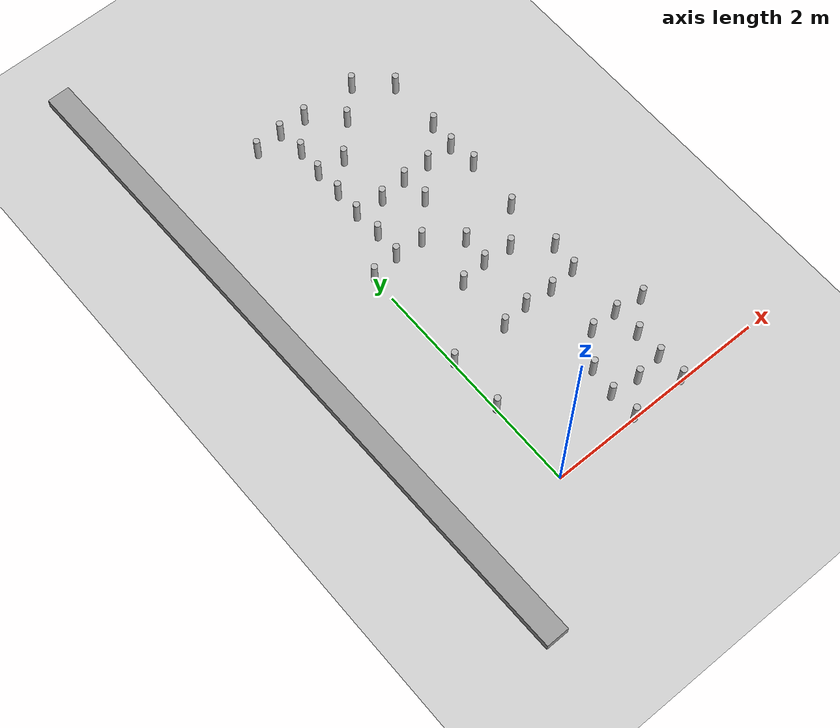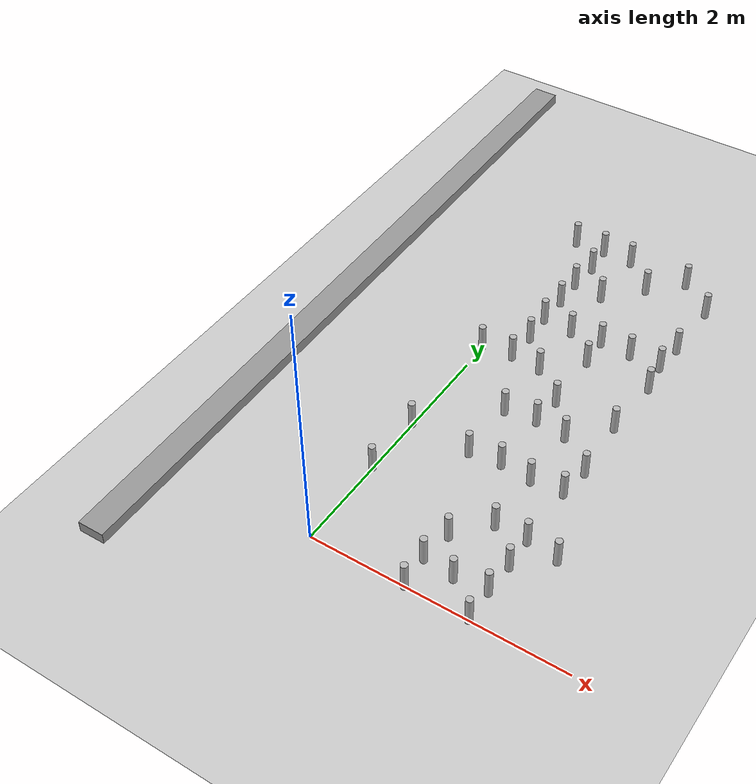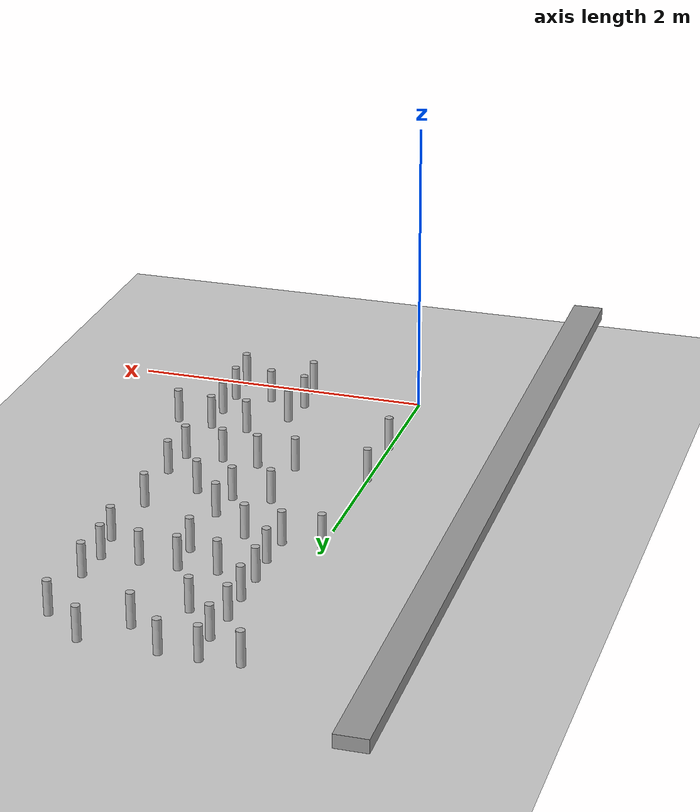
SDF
<sdf version="1.6">
 <world name="default">
  <model name="ground_plane">
   <static>1</static>
   <link name="link">
    <collision name="collision">
     <geometry><plane><normal>0 0 1</normal><size>100 100</size></plane></geometry>
     <surface><friction><ode><mu>100</mu><mu2>50</mu2></ode></friction></surface>
    </collision>
    <visual name="visual">
     <cast_shadows>0</cast_shadows>
     <geometry><plane><normal>0 0 1</normal><size>100 100</size></plane></geometry>
     <material>
      <script><uri>file://media/materials/scripts/gazebo.material</uri><name>Gazebo/Grey</name></script>
     </material>
    </visual>
   </link>
  </model>
  <model name="wall1">
   <static>1</static>
   <link name="link">
    <pose>0 0 0.42 0 -0 0</pose>
    <collision name="collision"><geometry><box><size>6 0.2 0.084</size></box></geometry></collision>
    <visual name="visual">
     <cast_shadows>0</cast_shadows>
     <geometry><box><size>6 0.2 0.084</size></box></geometry>
     <material>
      <script>
       <uri>model://grey_wall/materials/scripts</uri>
       <uri>model://grey_wall/materials/textures</uri>
       <name>vrc/grey_wall</name>
      </script>
     </material>
    </visual>
   </link>
   <pose>-1 2.0 0 0 -0 -1.55905</pose>
  </model>
  <model name="can2">
   <link name="link">
    <pose>0 0 0.115 0 -0 0</pose>
    <inertial>
     <mass>0.39</mass>
     <inertia><ixx>0.00058</ixx><ixy>0</ixy><ixz>0</ixz><iyy>0.00058</iyy><iyz>0</iyz><izz>0.00019</izz></inertia>
    </inertial>
    <collision name="collision">
     <geometry><cylinder><radius>0.0275</radius><length>0.23</length></cylinder></geometry>
    </collision>
    <visual name="visual">
     <geometry><cylinder><radius>0.0275</radius><length>0.23</length></cylinder></geometry>
     <material>
      <script>
       <uri>model://beer/materials/scripts</uri>
       <uri>model://beer/materials/textures</uri>
       <name>Beer/Diffuse</name>
      </script>
     </material>
    </visual>
   </link>
   <pose>1.25 2.75 -2e-06 1e-06 0 -9.5e-05</pose>
  </model>
  <model name="can6">
   <link name="link">
    <pose>0 0 0.115 0 -0 0</pose>
    <inertial>
     <mass>0.39</mass>
     <inertia><ixx>0.00058</ixx><ixy>0</ixy><ixz>0</ixz><iyy>0.00058</iyy><iyz>0</iyz><izz>0.00019</izz></inertia>
    </inertial>
    <collision name="collision">
     <geometry><cylinder><radius>0.0275</radius><length>0.23</length></cylinder></geometry>
    </collision>
    <visual name="visual">
     <geometry><cylinder><radius>0.0275</radius><length>0.23</length></cylinder></geometry>
     <material>
      <script>
       <uri>model://beer/materials/scripts</uri>
       <uri>model://beer/materials/textures</uri>
       <name>Beer/Diffuse</name>
      </script>
     </material>
    </visual>
   </link>
   <pose>0.25 3.25 -2e-06 1e-06 0 -9.5e-05</pose>
  </model>
  <model name="can12">
   <link name="link">
    <pose>0 0 0.115 0 -0 0</pose>
    <inertial>
     <mass>0.39</mass>
     <inertia><ixx>0.00058</ixx><ixy>0</ixy><ixz>0</ixz><iyy>0.00058</iyy><iyz>0</iyz><izz>0.00019</izz></inertia>
    </inertial>
    <collision name="collision">
     <geometry><cylinder><radius>0.0275</radius><length>0.23</length></cylinder></geometry>
    </collision>
    <visual name="visual">
     <geometry><cylinder><radius>0.0275</radius><length>0.23</length></cylinder></geometry>
     <material>
      <script>
       <uri>model://beer/materials/scripts</uri>
       <uri>model://beer/materials/textures</uri>
       <name>Beer/Diffuse</name>
      </script>
     </material>
    </visual>
   </link>
   <pose>0.5 1.71648537448 -2e-06 1e-06 0 -9.5e-05</pose>
  </model>
  <model name="can14">
   <link name="link">
    <pose>0 0 0.115 0 -0 0</pose>
    <inertial>
     <mass>0.39</mass>
     <inertia><ixx>0.00058</ixx><ixy>0</ixy><ixz>0</ixz><iyy>0.00058</iyy><iyz>0</iyz><izz>0.00019</izz></inertia>
    </inertial>
    <collision name="collision">
     <geometry><cylinder><radius>0.0275</radius><length>0.23</length></cylinder></geometry>
    </collision>
    <visual name="visual">
     <geometry><cylinder><radius>0.0275</radius><length>0.23</length></cylinder></geometry>
     <material>
      <script>
       <uri>model://beer/materials/scripts</uri>
       <uri>model://beer/materials/textures</uri>
       <name>Beer/Diffuse</name>
      </script>
     </material>
    </visual>
   </link>
   <pose>0.5 2.22964634361 -2e-06 1e-06 0 -9.5e-05</pose>
  </model>
  <model name="can17">
   <link name="link">
    <pose>0 0 0.115 0 -0 0</pose>
    <inertial>
     <mass>0.39</mass>
     <inertia><ixx>0.00058</ixx><ixy>0</ixy><ixz>0</ixz><iyy>0.00058</iyy><iyz>0</iyz><izz>0.00019</izz></inertia>
    </inertial>
    <collision name="collision">
     <geometry><cylinder><radius>0.0275</radius><length>0.23</length></cylinder></geometry>
    </collision>
    <visual name="visual">
     <geometry><cylinder><radius>0.0275</radius><length>0.23</length></cylinder></geometry>
     <material>
      <script>
       <uri>model://beer/materials/scripts</uri>
       <uri>model://beer/materials/textures</uri>
       <name>Beer/Diffuse</name>
      </script>
     </material>
    </visual>
   </link>
   <pose>0.758827067788 3.5 -2e-06 1e-06 0 -9.5e-05</pose>
  </model>
  <model name="can19">
   <link name="link">
    <pose>0 0 0.115 0 -0 0</pose>
    <inertial>
     <mass>0.39</mass>
     <inertia><ixx>0.00058</ixx><ixy>0</ixy><ixz>0</ixz><iyy>0.00058</iyy><iyz>0</iyz><izz>0.00019</izz></inertia>
    </inertial>
    <collision name="collision">
     <geometry><cylinder><radius>0.0275</radius><length>0.23</length></cylinder></geometry>
    </collision>
    <visual name="visual">
     <geometry><cylinder><radius>0.0275</radius><length>0.23</length></cylinder></geometry>
     <material>
      <script>
       <uri>model://beer/materials/scripts</uri>
       <uri>model://beer/materials/textures</uri>
       <name>Beer/Diffuse</name>
      </script>
     </material>
    </visual>
   </link>
   <pose>1.25368614977 2.0 -2e-06 1e-06 0 -9.5e-05</pose>
  </model>
  <model name="can21">
   <link name="link">
    <pose>0 0 0.115 0 -0 0</pose>
    <inertial>
     <mass>0.39</mass>
     <inertia><ixx>0.00058</ixx><ixy>0</ixy><ixz>0</ixz><iyy>0.00058</iyy><iyz>0</iyz><izz>0.00019</izz></inertia>
    </inertial>
    <collision name="collision">
     <geometry><cylinder><radius>0.0275</radius><length>0.23</length></cylinder></geometry>
    </collision>
    <visual name="visual">
     <geometry><cylinder><radius>0.0275</radius><length>0.23</length></cylinder></geometry>
     <material>
      <script>
       <uri>model://beer/materials/scripts</uri>
       <uri>model://beer/materials/textures</uri>
       <name>Beer/Diffuse</name>
      </script>
     </material>
    </visual>
   </link>
   <pose>1.28084954127 2.5 -2e-06 1e-06 0 -9.5e-05</pose>
  </model>
  <model name="can24">
   <link name="link">
    <pose>0 0 0.115 0 -0 0</pose>
    <inertial>
     <mass>0.39</mass>
     <inertia><ixx>0.00058</ixx><ixy>0</ixy><ixz>0</ixz><iyy>0.00058</iyy><iyz>0</iyz><izz>0.00019</izz></inertia>
    </inertial>
    <collision name="collision">
     <geometry><cylinder><radius>0.0275</radius><length>0.23</length></cylinder></geometry>
    </collision>
    <visual name="visual">
     <geometry><cylinder><radius>0.0275</radius><length>0.23</length></cylinder></geometry>
     <material>
      <script>
       <uri>model://beer/materials/scripts</uri>
       <uri>model://beer/materials/textures</uri>
       <name>Beer/Diffuse</name>
      </script>
     </material>
    </visual>
   </link>
   <pose>0.771695028293 2.0 -2e-06 1e-06 0 -9.5e-05</pose>
  </model>
  <model name="can25">
   <link name="link">
    <pose>0 0 0.115 0 -0 0</pose>
    <inertial>
     <mass>0.39</mass>
     <inertia><ixx>0.00058</ixx><ixy>0</ixy><ixz>0</ixz><iyy>0.00058</iyy><iyz>0</iyz><izz>0.00019</izz></inertia>
    </inertial>
    <collision name="collision">
     <geometry><cylinder><radius>0.0275</radius><length>0.23</length></cylinder></geometry>
    </collision>
    <visual name="visual">
     <geometry><cylinder><radius>0.0275</radius><length>0.23</length></cylinder></geometry>
     <material>
      <script>
       <uri>model://beer/materials/scripts</uri>
       <uri>model://beer/materials/textures</uri>
       <name>Beer/Diffuse</name>
      </script>
     </material>
    </visual>
   </link>
   <pose>0.0 3.73681978817 -2e-06 1e-06 0 -9.5e-05</pose>
  </model>
  <model name="can28">
   <link name="link">
    <pose>0 0 0.115 0 -0 0</pose>
    <inertial>
     <mass>0.39</mass>
     <inertia><ixx>0.00058</ixx><ixy>0</ixy><ixz>0</ixz><iyy>0.00058</iyy><iyz>0</iyz><izz>0.00019</izz></inertia>
    </inertial>
    <collision name="collision">
     <geometry><cylinder><radius>0.0275</radius><length>0.23</length></cylinder></geometry>
    </collision>
    <visual name="visual">
     <geometry><cylinder><radius>0.0275</radius><length>0.23</length></cylinder></geometry>
     <material>
      <script>
       <uri>model://beer/materials/scripts</uri>
       <uri>model://beer/materials/textures</uri>
       <name>Beer/Diffuse</name>
      </script>
     </material>
    </visual>
   </link>
   <pose>0.0 0.73987362745 -2e-06 1e-06 0 -9.5e-05</pose>
  </model>
  <model name="can33">
   <link name="link">
    <pose>0 0 0.115 0 -0 0</pose>
    <inertial>
     <mass>0.39</mass>
     <inertia><ixx>0.00058</ixx><ixy>0</ixy><ixz>0</ixz><iyy>0.00058</iyy><iyz>0</iyz><izz>0.00019</izz></inertia>
    </inertial>
    <collision name="collision">
     <geometry><cylinder><radius>0.0275</radius><length>0.23</length></cylinder></geometry>
    </collision>
    <visual name="visual">
     <geometry><cylinder><radius>0.0275</radius><length>0.23</length></cylinder></geometry>
     <material>
      <script>
       <uri>model://beer/materials/scripts</uri>
       <uri>model://beer/materials/textures</uri>
       <name>Beer/Diffuse</name>
      </script>
     </material>
    </visual>
   </link>
   <pose>1.25 1.25 -2e-06 1e-06 0 -9.5e-05</pose>
  </model>
  <model name="can35">
   <link name="link">
    <pose>0 0 0.115 0 -0 0</pose>
    <inertial>
     <mass>0.39</mass>
     <inertia><ixx>0.00058</ixx><ixy>0</ixy><ixz>0</ixz><iyy>0.00058</iyy><iyz>0</iyz><izz>0.00019</izz></inertia>
    </inertial>
    <collision name="collision">
     <geometry><cylinder><radius>0.0275</radius><length>0.23</length></cylinder></geometry>
    </collision>
    <visual name="visual">
     <geometry><cylinder><radius>0.0275</radius><length>0.23</length></cylinder></geometry>
     <material>
      <script>
       <uri>model://beer/materials/scripts</uri>
       <uri>model://beer/materials/textures</uri>
       <name>Beer/Diffuse</name>
      </script>
     </material>
    </visual>
   </link>
   <pose>0.25 3.75 -2e-06 1e-06 0 -9.5e-05</pose>
  </model>
  <model name="can36">
   <link name="link">
    <pose>0 0 0.115 0 -0 0</pose>
    <inertial>
     <mass>0.39</mass>
     <inertia><ixx>0.00058</ixx><ixy>0</ixy><ixz>0</ixz><iyy>0.00058</iyy><iyz>0</iyz><izz>0.00019</izz></inertia>
    </inertial>
    <collision name="collision">
     <geometry><cylinder><radius>0.0275</radius><length>0.23</length></cylinder></geometry>
    </collision>
    <visual name="visual">
     <geometry><cylinder><radius>0.0275</radius><length>0.23</length></cylinder></geometry>
     <material>
      <script>
       <uri>model://beer/materials/scripts</uri>
       <uri>model://beer/materials/textures</uri>
       <name>Beer/Diffuse</name>
      </script>
     </material>
    </visual>
   </link>
   <pose>0.761350480602 2.5 -2e-06 1e-06 0 -9.5e-05</pose>
  </model>
  <model name="can38">
   <link name="link">
    <pose>0 0 0.115 0 -0 0</pose>
    <inertial>
     <mass>0.39</mass>
     <inertia><ixx>0.00058</ixx><ixy>0</ixy><ixz>0</ixz><iyy>0.00058</iyy><iyz>0</iyz><izz>0.00019</izz></inertia>
    </inertial>
    <collision name="collision">
     <geometry><cylinder><radius>0.0275</radius><length>0.23</length></cylinder></geometry>
    </collision>
    <visual name="visual">
     <geometry><cylinder><radius>0.0275</radius><length>0.23</length></cylinder></geometry>
     <material>
      <script>
       <uri>model://beer/materials/scripts</uri>
       <uri>model://beer/materials/textures</uri>
       <name>Beer/Diffuse</name>
      </script>
     </material>
    </visual>
   </link>
   <pose>0.5 1.21987626861 -2e-06 1e-06 0 -9.5e-05</pose>
  </model>
  <model name="can39">
   <link name="link">
    <pose>0 0 0.115 0 -0 0</pose>
    <inertial>
     <mass>0.39</mass>
     <inertia><ixx>0.00058</ixx><ixy>0</ixy><ixz>0</ixz><iyy>0.00058</iyy><iyz>0</iyz><izz>0.00019</izz></inertia>
    </inertial>
    <collision name="collision">
     <geometry><cylinder><radius>0.0275</radius><length>0.23</length></cylinder></geometry>
    </collision>
    <visual name="visual">
     <geometry><cylinder><radius>0.0275</radius><length>0.23</length></cylinder></geometry>
     <material>
      <script>
       <uri>model://beer/materials/scripts</uri>
       <uri>model://beer/materials/textures</uri>
       <name>Beer/Diffuse</name>
      </script>
     </material>
    </visual>
   </link>
   <pose>1.27181490617 3.0 -2e-06 1e-06 0 -9.5e-05</pose>
  </model>
  <model name="can40">
   <link name="link">
    <pose>0 0 0.115 0 -0 0</pose>
    <inertial>
     <mass>0.39</mass>
     <inertia><ixx>0.00058</ixx><ixy>0</ixy><ixz>0</ixz><iyy>0.00058</iyy><iyz>0</iyz><izz>0.00019</izz></inertia>
    </inertial>
    <collision name="collision">
     <geometry><cylinder><radius>0.0275</radius><length>0.23</length></cylinder></geometry>
    </collision>
    <visual name="visual">
     <geometry><cylinder><radius>0.0275</radius><length>0.23</length></cylinder></geometry>
     <material>
      <script>
       <uri>model://beer/materials/scripts</uri>
       <uri>model://beer/materials/textures</uri>
       <name>Beer/Diffuse</name>
      </script>
     </material>
    </visual>
   </link>
   <pose>0.784743643753 0.5 -2e-06 1e-06 0 -9.5e-05</pose>
  </model>
  <model name="can42">
   <link name="link">
    <pose>0 0 0.115 0 -0 0</pose>
    <inertial>
     <mass>0.39</mass>
     <inertia><ixx>0.00058</ixx><ixy>0</ixy><ixz>0</ixz><iyy>0.00058</iyy><iyz>0</iyz><izz>0.00019</izz></inertia>
    </inertial>
    <collision name="collision">
     <geometry><cylinder><radius>0.0275</radius><length>0.23</length></cylinder></geometry>
    </collision>
    <visual name="visual">
     <geometry><cylinder><radius>0.0275</radius><length>0.23</length></cylinder></geometry>
     <material>
      <script>
       <uri>model://beer/materials/scripts</uri>
       <uri>model://beer/materials/textures</uri>
       <name>Beer/Diffuse</name>
      </script>
     </material>
    </visual>
   </link>
   <pose>1.0 0.748625102724 -2e-06 1e-06 0 -9.5e-05</pose>
  </model>
  <model name="can43">
   <link name="link">
    <pose>0 0 0.115 0 -0 0</pose>
    <inertial>
     <mass>0.39</mass>
     <inertia><ixx>0.00058</ixx><ixy>0</ixy><ixz>0</ixz><iyy>0.00058</iyy><iyz>0</iyz><izz>0.00019</izz></inertia>
    </inertial>
    <collision name="collision">
     <geometry><cylinder><radius>0.0275</radius><length>0.23</length></cylinder></geometry>
    </collision>
    <visual name="visual">
     <geometry><cylinder><radius>0.0275</radius><length>0.23</length></cylinder></geometry>
     <material>
      <script>
       <uri>model://beer/materials/scripts</uri>
       <uri>model://beer/materials/textures</uri>
       <name>Beer/Diffuse</name>
      </script>
     </material>
    </visual>
   </link>
   <pose>1.25782060675 0.5 -2e-06 1e-06 0 -9.5e-05</pose>
  </model>
  <model name="can45">
   <link name="link">
    <pose>0 0 0.115 0 -0 0</pose>
    <inertial>
     <mass>0.39</mass>
     <inertia><ixx>0.00058</ixx><ixy>0</ixy><ixz>0</ixz><iyy>0.00058</iyy><iyz>0</iyz><izz>0.00019</izz></inertia>
    </inertial>
    <collision name="collision">
     <geometry><cylinder><radius>0.0275</radius><length>0.23</length></cylinder></geometry>
    </collision>
    <visual name="visual">
     <geometry><cylinder><radius>0.0275</radius><length>0.23</length></cylinder></geometry>
     <material>
      <script>
       <uri>model://beer/materials/scripts</uri>
       <uri>model://beer/materials/textures</uri>
       <name>Beer/Diffuse</name>
      </script>
     </material>
    </visual>
   </link>
   <pose>1.0 1.72092333949 -2e-06 1e-06 0 -9.5e-05</pose>
  </model>
  <model name="can49">
   <link name="link">
    <pose>0 0 0.115 0 -0 0</pose>
    <inertial>
     <mass>0.39</mass>
     <inertia><ixx>0.00058</ixx><ixy>0</ixy><ixz>0</ixz><iyy>0.00058</iyy><iyz>0</iyz><izz>0.00019</izz></inertia>
    </inertial>
    <collision name="collision">
     <geometry><cylinder><radius>0.0275</radius><length>0.23</length></cylinder></geometry>
    </collision>
    <visual name="visual">
     <geometry><cylinder><radius>0.0275</radius><length>0.23</length></cylinder></geometry>
     <material>
      <script>
       <uri>model://beer/materials/scripts</uri>
       <uri>model://beer/materials/textures</uri>
       <name>Beer/Diffuse</name>
      </script>
     </material>
    </visual>
   </link>
   <pose>1.5 0.715805118168 -2e-06 1e-06 0 -9.5e-05</pose>
  </model>
  <model name="can50">
   <link name="link">
    <pose>0 0 0.115 0 -0 0</pose>
    <inertial>
     <mass>0.39</mass>
     <inertia><ixx>0.00058</ixx><ixy>0</ixy><ixz>0</ixz><iyy>0.00058</iyy><iyz>0</iyz><izz>0.00019</izz></inertia>
    </inertial>
    <collision name="collision">
     <geometry><cylinder><radius>0.0275</radius><length>0.23</length></cylinder></geometry>
    </collision>
    <visual name="visual">
     <geometry><cylinder><radius>0.0275</radius><length>0.23</length></cylinder></geometry>
     <material>
      <script>
       <uri>model://beer/materials/scripts</uri>
       <uri>model://beer/materials/textures</uri>
       <name>Beer/Diffuse</name>
      </script>
     </material>
    </visual>
   </link>
   <pose>0.75 0.25 -2e-06 1e-06 0 -9.5e-05</pose>
  </model>
  <model name="can52">
   <link name="link">
    <pose>0 0 0.115 0 -0 0</pose>
    <inertial>
     <mass>0.39</mass>
     <inertia><ixx>0.00058</ixx><ixy>0</ixy><ixz>0</ixz><iyy>0.00058</iyy><iyz>0</iyz><izz>0.00019</izz></inertia>
    </inertial>
    <collision name="collision">
     <geometry><cylinder><radius>0.0275</radius><length>0.23</length></cylinder></geometry>
    </collision>
    <visual name="visual">
     <geometry><cylinder><radius>0.0275</radius><length>0.23</length></cylinder></geometry>
     <material>
      <script>
       <uri>model://beer/materials/scripts</uri>
       <uri>model://beer/materials/textures</uri>
       <name>Beer/Diffuse</name>
      </script>
     </material>
    </visual>
   </link>
   <pose>1.0 0.218534555931 -2e-06 1e-06 0 -9.5e-05</pose>
  </model>
  <model name="can56">
   <link name="link">
    <pose>0 0 0.115 0 -0 0</pose>
    <inertial>
     <mass>0.39</mass>
     <inertia><ixx>0.00058</ixx><ixy>0</ixy><ixz>0</ixz><iyy>0.00058</iyy><iyz>0</iyz><izz>0.00019</izz></inertia>
    </inertial>
    <collision name="collision">
     <geometry><cylinder><radius>0.0275</radius><length>0.23</length></cylinder></geometry>
    </collision>
    <visual name="visual">
     <geometry><cylinder><radius>0.0275</radius><length>0.23</length></cylinder></geometry>
     <material>
      <script>
       <uri>model://beer/materials/scripts</uri>
       <uri>model://beer/materials/textures</uri>
       <name>Beer/Diffuse</name>
      </script>
     </material>
    </visual>
   </link>
   <pose>0.271223380198 3.5 -2e-06 1e-06 0 -9.5e-05</pose>
  </model>
  <model name="can57">
   <link name="link">
    <pose>0 0 0.115 0 -0 0</pose>
    <inertial>
     <mass>0.39</mass>
     <inertia><ixx>0.00058</ixx><ixy>0</ixy><ixz>0</ixz><iyy>0.00058</iyy><iyz>0</iyz><izz>0.00019</izz></inertia>
    </inertial>
    <collision name="collision">
     <geometry><cylinder><radius>0.0275</radius><length>0.23</length></cylinder></geometry>
    </collision>
    <visual name="visual">
     <geometry><cylinder><radius>0.0275</radius><length>0.23</length></cylinder></geometry>
     <material>
      <script>
       <uri>model://beer/materials/scripts</uri>
       <uri>model://beer/materials/textures</uri>
       <name>Beer/Diffuse</name>
      </script>
     </material>
    </visual>
   </link>
   <pose>0.25 2.25 -2e-06 1e-06 0 -9.5e-05</pose>
  </model>
  <model name="can59">
   <link name="link">
    <pose>0 0 0.115 0 -0 0</pose>
    <inertial>
     <mass>0.39</mass>
     <inertia><ixx>0.00058</ixx><ixy>0</ixy><ixz>0</ixz><iyy>0.00058</iyy><iyz>0</iyz><izz>0.00019</izz></inertia>
    </inertial>
    <collision name="collision">
     <geometry><cylinder><radius>0.0275</radius><length>0.23</length></cylinder></geometry>
    </collision>
    <visual name="visual">
     <geometry><cylinder><radius>0.0275</radius><length>0.23</length></cylinder></geometry>
     <material>
      <script>
       <uri>model://beer/materials/scripts</uri>
       <uri>model://beer/materials/textures</uri>
       <name>Beer/Diffuse</name>
      </script>
     </material>
    </visual>
   </link>
   <pose>0.256179100412 3.0 -2e-06 1e-06 0 -9.5e-05</pose>
  </model>
  <model name="can60">
   <link name="link">
    <pose>0 0 0.115 0 -0 0</pose>
    <inertial>
     <mass>0.39</mass>
     <inertia><ixx>0.00058</ixx><ixy>0</ixy><ixz>0</ixz><iyy>0.00058</iyy><iyz>0</iyz><izz>0.00019</izz></inertia>
    </inertial>
    <collision name="collision">
     <geometry><cylinder><radius>0.0275</radius><length>0.23</length></cylinder></geometry>
    </collision>
    <visual name="visual">
     <geometry><cylinder><radius>0.0275</radius><length>0.23</length></cylinder></geometry>
     <material>
      <script>
       <uri>model://beer/materials/scripts</uri>
       <uri>model://beer/materials/textures</uri>
       <name>Beer/Diffuse</name>
      </script>
     </material>
    </visual>
   </link>
   <pose>0.25 2.75 -2e-06 1e-06 0 -9.5e-05</pose>
  </model>
  <model name="can65">
   <link name="link">
    <pose>0 0 0.115 0 -0 0</pose>
    <inertial>
     <mass>0.39</mass>
     <inertia><ixx>0.00058</ixx><ixy>0</ixy><ixz>0</ixz><iyy>0.00058</iyy><iyz>0</iyz><izz>0.00019</izz></inertia>
    </inertial>
    <collision name="collision">
     <geometry><cylinder><radius>0.0275</radius><length>0.23</length></cylinder></geometry>
    </collision>
    <visual name="visual">
     <geometry><cylinder><radius>0.0275</radius><length>0.23</length></cylinder></geometry>
     <material>
      <script>
       <uri>model://beer/materials/scripts</uri>
       <uri>model://beer/materials/textures</uri>
       <name>Beer/Diffuse</name>
      </script>
     </material>
    </visual>
   </link>
   <pose>0.0 1.24342366 -2e-06 1e-06 0 -9.5e-05</pose>
  </model>
  <model name="can67">
   <link name="link">
    <pose>0 0 0.115 0 -0 0</pose>
    <inertial>
     <mass>0.39</mass>
     <inertia><ixx>0.00058</ixx><ixy>0</ixy><ixz>0</ixz><iyy>0.00058</iyy><iyz>0</iyz><izz>0.00019</izz></inertia>
    </inertial>
    <collision name="collision">
     <geometry><cylinder><radius>0.0275</radius><length>0.23</length></cylinder></geometry>
    </collision>
    <visual name="visual">
     <geometry><cylinder><radius>0.0275</radius><length>0.23</length></cylinder></geometry>
     <material>
      <script>
       <uri>model://beer/materials/scripts</uri>
       <uri>model://beer/materials/textures</uri>
       <name>Beer/Diffuse</name>
      </script>
     </material>
    </visual>
   </link>
   <pose>0.5 3.74589577571 -2e-06 1e-06 0 -9.5e-05</pose>
  </model>
  <model name="can72">
   <link name="link">
    <pose>0 0 0.115 0 -0 0</pose>
    <inertial>
     <mass>0.39</mass>
     <inertia><ixx>0.00058</ixx><ixy>0</ixy><ixz>0</ixz><iyy>0.00058</iyy><iyz>0</iyz><izz>0.00019</izz></inertia>
    </inertial>
    <collision name="collision">
     <geometry><cylinder><radius>0.0275</radius><length>0.23</length></cylinder></geometry>
    </collision>
    <visual name="visual">
     <geometry><cylinder><radius>0.0275</radius><length>0.23</length></cylinder></geometry>
     <material>
      <script>
       <uri>model://beer/materials/scripts</uri>
       <uri>model://beer/materials/textures</uri>
       <name>Beer/Diffuse</name>
      </script>
     </material>
    </visual>
   </link>
   <pose>1.0 2.74772806948 -2e-06 1e-06 0 -9.5e-05</pose>
  </model>
  <model name="can79">
   <link name="link">
    <pose>0 0 0.115 0 -0 0</pose>
    <inertial>
     <mass>0.39</mass>
     <inertia><ixx>0.00058</ixx><ixy>0</ixy><ixz>0</ixz><iyy>0.00058</iyy><iyz>0</iyz><izz>0.00019</izz></inertia>
    </inertial>
    <collision name="collision">
     <geometry><cylinder><radius>0.0275</radius><length>0.23</length></cylinder></geometry>
    </collision>
    <visual name="visual">
     <geometry><cylinder><radius>0.0275</radius><length>0.23</length></cylinder></geometry>
     <material>
      <script>
       <uri>model://beer/materials/scripts</uri>
       <uri>model://beer/materials/textures</uri>
       <name>Beer/Diffuse</name>
      </script>
     </material>
    </visual>
   </link>
   <pose>1.27953701583 3.5 -2e-06 1e-06 0 -9.5e-05</pose>
  </model>
  <model name="can83">
   <link name="link">
    <pose>0 0 0.115 0 -0 0</pose>
    <inertial>
     <mass>0.39</mass>
     <inertia><ixx>0.00058</ixx><ixy>0</ixy><ixz>0</ixz><iyy>0.00058</iyy><iyz>0</iyz><izz>0.00019</izz></inertia>
    </inertial>
    <collision name="collision">
     <geometry><cylinder><radius>0.0275</radius><length>0.23</length></cylinder></geometry>
    </collision>
    <visual name="visual">
     <geometry><cylinder><radius>0.0275</radius><length>0.23</length></cylinder></geometry>
     <material>
      <script>
       <uri>model://beer/materials/scripts</uri>
       <uri>model://beer/materials/textures</uri>
       <name>Beer/Diffuse</name>
      </script>
     </material>
    </visual>
   </link>
   <pose>0.75 2.75 -2e-06 1e-06 0 -9.5e-05</pose>
  </model>
  <model name="can85">
   <link name="link">
    <pose>0 0 0.115 0 -0 0</pose>
    <inertial>
     <mass>0.39</mass>
     <inertia><ixx>0.00058</ixx><ixy>0</ixy><ixz>0</ixz><iyy>0.00058</iyy><iyz>0</iyz><izz>0.00019</izz></inertia>
    </inertial>
    <collision name="collision">
     <geometry><cylinder><radius>0.0275</radius><length>0.23</length></cylinder></geometry>
    </collision>
    <visual name="visual">
     <geometry><cylinder><radius>0.0275</radius><length>0.23</length></cylinder></geometry>
     <material>
      <script>
       <uri>model://beer/materials/scripts</uri>
       <uri>model://beer/materials/textures</uri>
       <name>Beer/Diffuse</name>
      </script>
     </material>
    </visual>
   </link>
   <pose>0.75 1.75 -2e-06 1e-06 0 -9.5e-05</pose>
  </model>
  <model name="can89">
   <link name="link">
    <pose>0 0 0.115 0 -0 0</pose>
    <inertial>
     <mass>0.39</mass>
     <inertia><ixx>0.00058</ixx><ixy>0</ixy><ixz>0</ixz><iyy>0.00058</iyy><iyz>0</iyz><izz>0.00019</izz></inertia>
    </inertial>
    <collision name="collision">
     <geometry><cylinder><radius>0.0275</radius><length>0.23</length></cylinder></geometry>
    </collision>
    <visual name="visual">
     <geometry><cylinder><radius>0.0275</radius><length>0.23</length></cylinder></geometry>
     <material>
      <script>
       <uri>model://beer/materials/scripts</uri>
       <uri>model://beer/materials/textures</uri>
       <name>Beer/Diffuse</name>
      </script>
     </material>
    </visual>
   </link>
   <pose>0.762264381395 0.0 -2e-06 1e-06 0 -9.5e-05</pose>
  </model>
  <model name="can95">
   <link name="link">
    <pose>0 0 0.115 0 -0 0</pose>
    <inertial>
     <mass>0.39</mass>
     <inertia><ixx>0.00058</ixx><ixy>0</ixy><ixz>0</ixz><iyy>0.00058</iyy><iyz>0</iyz><izz>0.00019</izz></inertia>
    </inertial>
    <collision name="collision">
     <geometry><cylinder><radius>0.0275</radius><length>0.23</length></cylinder></geometry>
    </collision>
    <visual name="visual">
     <geometry><cylinder><radius>0.0275</radius><length>0.23</length></cylinder></geometry>
     <material>
      <script>
       <uri>model://beer/materials/scripts</uri>
       <uri>model://beer/materials/textures</uri>
       <name>Beer/Diffuse</name>
      </script>
     </material>
    </visual>
   </link>
   <pose>1.0 1.22633292045 -2e-06 1e-06 0 -9.5e-05</pose>
  </model>
  <model name="can97">
   <link name="link">
    <pose>0 0 0.115 0 -0 0</pose>
    <inertial>
     <mass>0.39</mass>
     <inertia><ixx>0.00058</ixx><ixy>0</ixy><ixz>0</ixz><iyy>0.00058</iyy><iyz>0</iyz><izz>0.00019</izz></inertia>
    </inertial>
    <collision name="collision">
     <geometry><cylinder><radius>0.0275</radius><length>0.23</length></cylinder></geometry>
    </collision>
    <visual name="visual">
     <geometry><cylinder><radius>0.0275</radius><length>0.23</length></cylinder></geometry>
     <material>
      <script>
       <uri>model://beer/materials/scripts</uri>
       <uri>model://beer/materials/textures</uri>
       <name>Beer/Diffuse</name>
      </script>
     </material>
    </visual>
   </link>
   <pose>1.25660199131 0.0 -2e-06 1e-06 0 -9.5e-05</pose>
  </model>
  <model name="can101">
   <link name="link">
    <pose>0 0 0.115 0 -0 0</pose>
    <inertial>
     <mass>0.39</mass>
     <inertia><ixx>0.00058</ixx><ixy>0</ixy><ixz>0</ixz><iyy>0.00058</iyy><iyz>0</iyz><izz>0.00019</izz></inertia>
    </inertial>
    <collision name="collision">
     <geometry><cylinder><radius>0.0275</radius><length>0.23</length></cylinder></geometry>
    </collision>
    <visual name="visual">
     <geometry><cylinder><radius>0.0275</radius><length>0.23</length></cylinder></geometry>
     <material>
      <script>
       <uri>model://beer/materials/scripts</uri>
       <uri>model://beer/materials/textures</uri>
       <name>Beer/Diffuse</name>
      </script>
     </material>
    </visual>
   </link>
   <pose>0.26443708216 2.5 -2e-06 1e-06 0 -9.5e-05</pose>
  </model>
  <model name="can109">
   <link name="link">
    <pose>0 0 0.115 0 -0 0</pose>
    <inertial>
     <mass>0.39</mass>
     <inertia><ixx>0.00058</ixx><ixy>0</ixy><ixz>0</ixz><iyy>0.00058</iyy><iyz>0</iyz><izz>0.00019</izz></inertia>
    </inertial>
    <collision name="collision">
     <geometry><cylinder><radius>0.0275</radius><length>0.23</length></cylinder></geometry>
    </collision>
    <visual name="visual">
     <geometry><cylinder><radius>0.0275</radius><length>0.23</length></cylinder></geometry>
     <material>
      <script>
       <uri>model://beer/materials/scripts</uri>
       <uri>model://beer/materials/textures</uri>
       <name>Beer/Diffuse</name>
      </script>
     </material>
    </visual>
   </link>
   <pose>1.28179515065 1.5 -2e-06 1e-06 0 -9.5e-05</pose>
  </model>
  <model name="can113">
   <link name="link">
    <pose>0 0 0.115 0 -0 0</pose>
    <inertial>
     <mass>0.39</mass>
     <inertia><ixx>0.00058</ixx><ixy>0</ixy><ixz>0</ixz><iyy>0.00058</iyy><iyz>0</iyz><izz>0.00019</izz></inertia>
    </inertial>
    <collision name="collision">
     <geometry><cylinder><radius>0.0275</radius><length>0.23</length></cylinder></geometry>
    </collision>
    <visual name="visual">
     <geometry><cylinder><radius>0.0275</radius><length>0.23</length></cylinder></geometry>
     <material>
      <script>
       <uri>model://beer/materials/scripts</uri>
       <uri>model://beer/materials/textures</uri>
       <name>Beer/Diffuse</name>
      </script>
     </material>
    </visual>
   </link>
   <pose>1.0 3.7382960907 -2e-06 1e-06 0 -9.5e-05</pose>
  </model>
  <model name="can114">
   <link name="link">
    <pose>0 0 0.115 0 -0 0</pose>
    <inertial>
     <mass>0.39</mass>
     <inertia><ixx>0.00058</ixx><ixy>0</ixy><ixz>0</ixz><iyy>0.00058</iyy><iyz>0</iyz><izz>0.00019</izz></inertia>
    </inertial>
    <collision name="collision">
     <geometry><cylinder><radius>0.0275</radius><length>0.23</length></cylinder></geometry>
    </collision>
    <visual name="visual">
     <geometry><cylinder><radius>0.0275</radius><length>0.23</length></cylinder></geometry>
     <material>
      <script>
       <uri>model://beer/materials/scripts</uri>
       <uri>model://beer/materials/textures</uri>
       <name>Beer/Diffuse</name>
      </script>
     </material>
    </visual>
   </link>
   <pose>0.0 2.22084535823 -2e-06 1e-06 0 -9.5e-05</pose>
  </model>
  <model name="can115">
   <link name="link">
    <pose>0 0 0.115 0 -0 0</pose>
    <inertial>
     <mass>0.39</mass>
     <inertia><ixx>0.00058</ixx><ixy>0</ixy><ixz>0</ixz><iyy>0.00058</iyy><iyz>0</iyz><izz>0.00019</izz></inertia>
    </inertial>
    <collision name="collision">
     <geometry><cylinder><radius>0.0275</radius><length>0.23</length></cylinder></geometry>
    </collision>
    <visual name="visual">
     <geometry><cylinder><radius>0.0275</radius><length>0.23</length></cylinder></geometry>
     <material>
      <script>
       <uri>model://beer/materials/scripts</uri>
       <uri>model://beer/materials/textures</uri>
       <name>Beer/Diffuse</name>
      </script>
     </material>
    </visual>
   </link>
   <pose>0.5 3.2234041953 -2e-06 1e-06 0 -9.5e-05</pose>
  </model>
  <model name="can116">
   <link name="link">
    <pose>0 0 0.115 0 -0 0</pose>
    <inertial>
     <mass>0.39</mass>
     <inertia><ixx>0.00058</ixx><ixy>0</ixy><ixz>0</ixz><iyy>0.00058</iyy><iyz>0</iyz><izz>0.00019</izz></inertia>
    </inertial>
    <collision name="collision">
     <geometry><cylinder><radius>0.0275</radius><length>0.23</length></cylinder></geometry>
    </collision>
    <visual name="visual">
     <geometry><cylinder><radius>0.0275</radius><length>0.23</length></cylinder></geometry>
     <material>
      <script>
       <uri>model://beer/materials/scripts</uri>
       <uri>model://beer/materials/textures</uri>
       <name>Beer/Diffuse</name>
      </script>
     </material>
    </visual>
   </link>
   <pose>1.25 0.25 -2e-06 1e-06 0 -9.5e-05</pose>
  </model>
  <model name="can117">
   <link name="link">
    <pose>0 0 0.115 0 -0 0</pose>
    <inertial>
     <mass>0.39</mass>
     <inertia><ixx>0.00058</ixx><ixy>0</ixy><ixz>0</ixz><iyy>0.00058</iyy><iyz>0</iyz><izz>0.00019</izz></inertia>
    </inertial>
    <collision name="collision">
     <geometry><cylinder><radius>0.0275</radius><length>0.23</length></cylinder></geometry>
    </collision>
    <visual name="visual">
     <geometry><cylinder><radius>0.0275</radius><length>0.23</length></cylinder></geometry>
     <material>
      <script>
       <uri>model://beer/materials/scripts</uri>
       <uri>model://beer/materials/textures</uri>
       <name>Beer/Diffuse</name>
      </script>
     </material>
    </visual>
   </link>
   <pose>1.25 0.75 -2e-06 1e-06 0 -9.5e-05</pose>
  </model>
  <model name="can125">
   <link name="link">
    <pose>0 0 0.115 0 -0 0</pose>
    <inertial>
     <mass>0.39</mass>
     <inertia><ixx>0.00058</ixx><ixy>0</ixy><ixz>0</ixz><iyy>0.00058</iyy><iyz>0</iyz><izz>0.00019</izz></inertia>
    </inertial>
    <collision name="collision">
     <geometry><cylinder><radius>0.0275</radius><length>0.23</length></cylinder></geometry>
    </collision>
    <visual name="visual">
     <geometry><cylinder><radius>0.0275</radius><length>0.23</length></cylinder></geometry>
     <material>
      <script>
       <uri>model://beer/materials/scripts</uri>
       <uri>model://beer/materials/textures</uri>
       <name>Beer/Diffuse</name>
      </script>
     </material>
    </visual>
   </link>
   <pose>0.5 2.72873658101 -2e-06 1e-06 0 -9.5e-05</pose>
  </model>
  <model name="can128">
   <link name="link">
    <pose>0 0 0.115 0 -0 0</pose>
    <inertial>
     <mass>0.39</mass>
     <inertia><ixx>0.00058</ixx><ixy>0</ixy><ixz>0</ixz><iyy>0.00058</iyy><iyz>0</iyz><izz>0.00019</izz></inertia>
    </inertial>
    <collision name="collision">
     <geometry><cylinder><radius>0.0275</radius><length>0.23</length></cylinder></geometry>
    </collision>
    <visual name="visual">
     <geometry><cylinder><radius>0.0275</radius><length>0.23</length></cylinder></geometry>
     <material>
      <script>
       <uri>model://beer/materials/scripts</uri>
       <uri>model://beer/materials/textures</uri>
       <name>Beer/Diffuse</name>
      </script>
     </material>
    </visual>
   </link>
   <pose>0.75 1.25 -2e-06 1e-06 0 -9.5e-05</pose>
  </model>
 </world>
</sdf>
